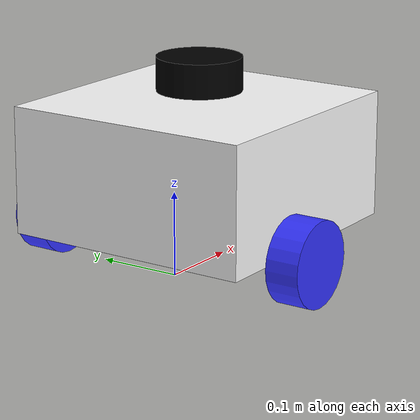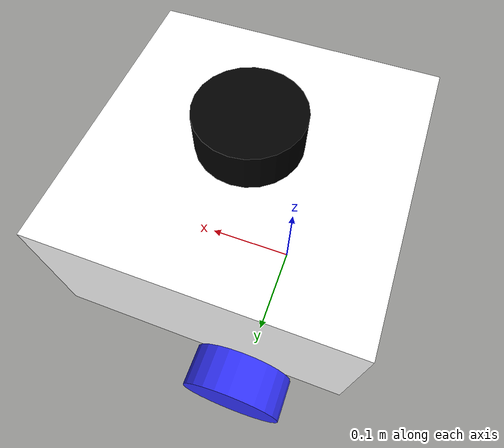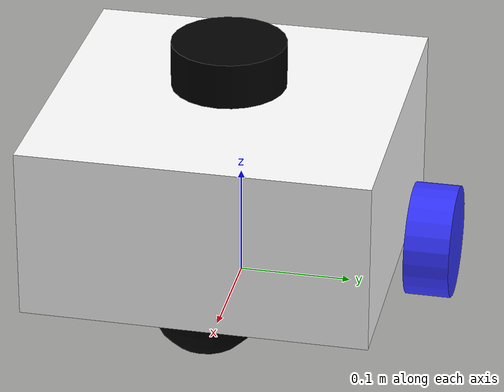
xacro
<?xml version="1.0"?>
<robot xmlns:xacro="http://www.ros.org/wiki/xacro">

    <xacro:include filename="inertial_macros.xacro" />

    <material name="white">
        <color rgba="1 1 1 1"/>
    </material>

    <material name="orange">
        <color rgba="1 0.3 0.1 1"/>
    </material>

    <material name="blue">
        <color rgba="0.2 0.2 1 1"/>
    </material>

    <material name="black">
        <color rgba="0 0 0 1"/>
    </material>

    <link name="base_link">
    </link>
    <link name="base_footprint"/>

    <joint name="base_footprint_joint" type="fixed">
        <parent link="base_footprint"/>
        <child link="base_link"/>
        <origin xyz="0 0 0.05" rpy="0 0 0"/>
    </joint>

    <!-- CHASSIS -->

    <joint name="chassis_joint" type="fixed">
        <parent link="base_link"/>
        <child link="chassis"/>
        <origin xyz="-0.1 0 0"/>
    </joint>

    <link name="chassis">
        <visual>
            <origin xyz="0.15 0 0.075" rpy="0 0 0"/>
            <geometry>
                <box size="0.3 0.3 0.15"/>
            </geometry>
            <material name="white"/>
        </visual>
        <collision>
            <origin xyz="0.15 0 0.075" rpy="0 0 0"/>
            <geometry>
                <box size="0.3 0.3 0.15"/>
            </geometry>
        </collision>
        <xacro:inertial_box mass="0.5" x="0.3" y="0.3" z="0.15">
            <origin xyz="0.15 0 0.075" rpy="0 0 0"/>
        </xacro:inertial_box>
    </link>

    <!-- LEFT WHEEL -->

    <joint name="left_wheel_joint" type="continuous">
        <parent link="base_link"/>
        <child link="left_wheel"/>
        <origin xyz="0 0.175 0" rpy="-${pi/2} 0 0"/>
        <axis xyz="0 0 1"/>
    </joint>

    <link name="left_wheel">
        <visual>
            <geometry>
                <cylinder length="0.04" radius="0.05" />
            </geometry>
            <material name="blue"/>
        </visual>
        <collision>
            <geometry>
                <cylinder length="0.04" radius="0.05" />
            </geometry>
        </collision>
        <xacro:inertial_cylinder mass="0.1" length="0.04" radius="0.05">
            <origin xyz="0 0 0" rpy="0 0 0"/>
        </xacro:inertial_cylinder>
    </link>

    <!-- RIGHT WHEEL -->

    <joint name="right_wheel_joint" type="continuous">
        <parent link="base_link"/>
        <child link="right_wheel"/>
        <origin xyz="0 -0.175 0" rpy="${pi/2} 0 0"/>
        <axis xyz="0 0 -1"/>
    </joint>

    <link name="right_wheel">
        <visual>
            <geometry>
                <cylinder length="0.04" radius="0.05" />
            </geometry>
            <material name="blue"/>
        </visual>
        <collision>
            <geometry>
                <cylinder length="0.04" radius="0.05" />
            </geometry>
        </collision>
        <xacro:inertial_cylinder mass="0.1" length="0.04" radius="0.05">
            <origin xyz="0 0 0" rpy="0 0 0"/>
        </xacro:inertial_cylinder>
    </link>

    <!-- CASTER WHEEL -->

    <joint name="caster_wheel_joint" type="fixed">
        <parent link="chassis"/>
        <child link="caster_wheel"/>
        <origin xyz="0.24 0 0" rpy="0 0 0"/>
    </joint>

    <link name="caster_wheel">
        <visual>
            <geometry>
                <sphere radius="0.05" />
            </geometry>
            <material name="black"/>
        </visual>
        <collision>
            <geometry>
                <sphere radius="0.05" />
            </geometry>
        </collision>
        <xacro:inertial_sphere mass="0.1" radius="0.05">
            <origin xyz="0 0 0" rpy="0 0 0"/>
        </xacro:inertial_sphere>
    </link>

    <!-- LIDAR -->
    <!-- 변경 후 -->
    <joint name="lidar_joint" type="fixed">
        <parent link="chassis"/>
        <child link="laser_frame"/>
        <origin xyz="0.15 0 0.18" rpy="0 0 0"/>
    </joint>

    <link name="laser_frame">
        <visual>
            <geometry>
                <cylinder length="0.04" radius="0.05"/>
            </geometry>
            <material name="black"/>
        </visual>
        <collision>
            <geometry>
                <cylinder length="0.04" radius="0.05"/>
            </geometry>
        </collision>
        <xacro:inertial_cylinder mass="0.1" length="0.04" radius="0.05">
            <origin xyz="0 0 0" rpy="0 0 0"/>
        </xacro:inertial_cylinder>
    </link>

</robot>
